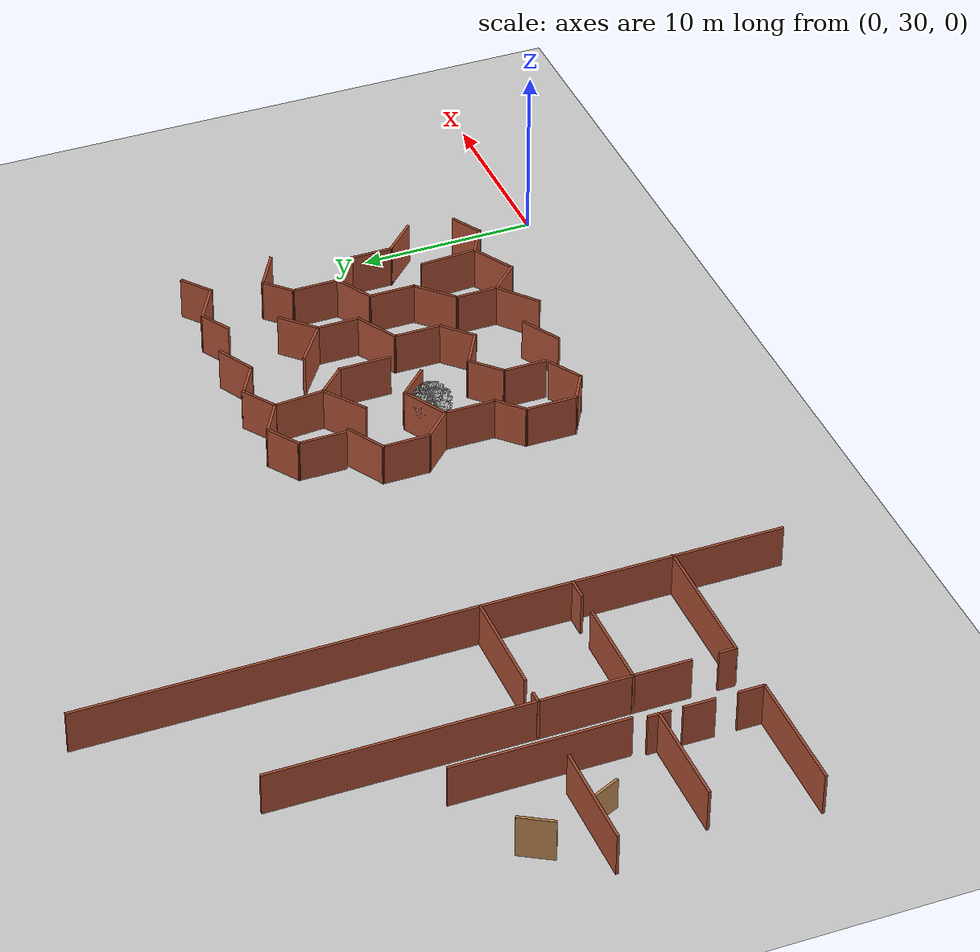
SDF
<sdf version="1.6">
 <world name="default">
  <model name="maze_rect_3">
   <pose>4e-06 -9.9e-05 0 0 -0 1.57001</pose>
   <link name="Wall_113">
    <collision name="Wall_113_Collision">
     <geometry><box><size>2 0.15 2.5</size></box></geometry>
     <pose>0 0 1.25 0 -0 0</pose>
    </collision>
    <visual name="Wall_113_Visual">
     <pose>0 0 1.25 0 -0 0</pose>
     <geometry><box><size>2 0.15 2.5</size></box></geometry>
     <material>
      <script><uri>file://media/materials/scripts/gazebo.material</uri><name>Gazebo/Bricks</name></script>
      <ambient>1 1 1 1</ambient>
     </material>
     <meta><layer>0</layer></meta>
    </visual>
    <pose>34.4861 17.9008 0 0 -0 1.0472</pose>
   </link>
   <link name="Wall_114">
    <collision name="Wall_114_Collision">
     <geometry><box><size>3 0.15 2.5</size></box></geometry>
     <pose>0 0 1.25 0 -0 0</pose>
    </collision>
    <visual name="Wall_114_Visual">
     <pose>0 0 1.25 0 -0 0</pose>
     <geometry><box><size>3 0.15 2.5</size></box></geometry>
     <material>
      <script><uri>file://media/materials/scripts/gazebo.material</uri><name>Gazebo/Bricks</name></script>
      <ambient>1 1 1 1</ambient>
     </material>
     <meta><layer>0</layer></meta>
    </visual>
    <pose>36.3736 18.7018 0 0 -0 0</pose>
   </link>
   <link name="Wall_115">
    <collision name="Wall_115_Collision">
     <geometry><box><size>2 0.15 2.5</size></box></geometry>
     <pose>0 0 1.25 0 -0 0</pose>
    </collision>
    <visual name="Wall_115_Visual">
     <pose>0 0 1.25 0 -0 0</pose>
     <geometry><box><size>2 0.15 2.5</size></box></geometry>
     <material>
      <script><uri>file://media/materials/scripts/gazebo.material</uri><name>Gazebo/Bricks</name></script>
      <ambient>1 1 1 1</ambient>
     </material>
     <meta><layer>0</layer></meta>
    </visual>
    <pose>38.4527 18.0478 0 0 -0 -0.785398</pose>
   </link>
   <link name="Wall_116">
    <collision name="Wall_116_Collision">
     <geometry><box><size>3 0.15 2.5</size></box></geometry>
     <pose>0 0 1.25 0 -0 0</pose>
    </collision>
    <visual name="Wall_116_Visual">
     <pose>0 0 1.25 0 -0 0</pose>
     <geometry><box><size>3 0.15 2.5</size></box></geometry>
     <material>
      <script><uri>file://media/materials/scripts/gazebo.material</uri><name>Gazebo/Bricks</name></script>
      <ambient>1 1 1 1</ambient>
     </material>
     <meta><layer>0</layer></meta>
    </visual>
    <pose>40.5318 17.3937 0 0 -0 0</pose>
   </link>
   <link name="Wall_117">
    <collision name="Wall_117_Collision">
     <geometry><box><size>2.25 0.15 2.5</size></box></geometry>
     <pose>0 0 1.25 0 -0 0</pose>
    </collision>
    <visual name="Wall_117_Visual">
     <pose>0 0 1.25 0 -0 0</pose>
     <geometry><box><size>2.25 0.15 2.5</size></box></geometry>
     <material>
      <script><uri>file://media/materials/scripts/gazebo.material</uri><name>Gazebo/Bricks</name></script>
      <ambient>1 1 1 1</ambient>
     </material>
     <meta><layer>0</layer></meta>
    </visual>
    <pose>42.6993 18.1362 0 0 -0 0.785398</pose>
   </link>
   <link name="Wall_118">
    <collision name="Wall_118_Collision">
     <geometry><box><size>2.75 0.15 2.5</size></box></geometry>
     <pose>0 0 1.25 0 -0 0</pose>
    </collision>
    <visual name="Wall_118_Visual">
     <pose>0 0 1.25 0 -0 0</pose>
     <geometry><box><size>2.75 0.15 2.5</size></box></geometry>
     <material>
      <script><uri>file://media/materials/scripts/gazebo.material</uri><name>Gazebo/Bricks</name></script>
      <ambient>1 1 1 1</ambient>
     </material>
     <meta><layer>0</layer></meta>
    </visual>
    <pose>44.7417 18.8786 0 0 -0 0</pose>
   </link>
   <link name="Wall_119">
    <collision name="Wall_119_Collision">
     <geometry><box><size>2.5 0.15 2.5</size></box></geometry>
     <pose>0 0 1.25 0 -0 0</pose>
    </collision>
    <visual name="Wall_119_Visual">
     <pose>0 0 1.25 0 -0 0</pose>
     <geometry><box><size>2.5 0.15 2.5</size></box></geometry>
     <material>
      <script><uri>file://media/materials/scripts/gazebo.material</uri><name>Gazebo/Bricks</name></script>
      <ambient>1 1 1 1</ambient>
     </material>
     <meta><layer>0</layer></meta>
    </visual>
    <pose>46.6292 17.861 0 0 -0 -1.0472</pose>
   </link>
   <link name="Wall_121">
    <collision name="Wall_121_Collision">
     <geometry><box><size>2.75 0.15 2.5</size></box></geometry>
     <pose>0 0 1.25 0 -0 0</pose>
    </collision>
    <visual name="Wall_121_Visual">
     <pose>0 0 1.25 0 -0 0</pose>
     <geometry><box><size>2.75 0.15 2.5</size></box></geometry>
     <material>
      <script><uri>file://media/materials/scripts/gazebo.material</uri><name>Gazebo/Bricks</name></script>
      <ambient>1 1 1 1</ambient>
     </material>
     <meta><layer>0</layer></meta>
    </visual>
    <pose>48.7841 16.998 0 0 -0 0</pose>
   </link>
   <link name="Wall_122">
    <collision name="Wall_122_Collision">
     <geometry><box><size>2.17873 0.15 2.5</size></box></geometry>
     <pose>0 0 1.25 0 -0 0</pose>
    </collision>
    <visual name="Wall_122_Visual">
     <pose>0 0 1.25 0 -0 0</pose>
     <geometry><box><size>2.17873 0.15 2.5</size></box></geometry>
     <material>
      <script><uri>file://media/materials/scripts/gazebo.material</uri><name>Gazebo/Bricks</name></script>
      <ambient>1 1 1 1</ambient>
     </material>
     <meta><layer>0</layer></meta>
    </visual>
    <pose>50.652 16.1575 0 0 -0 -0.976644</pose>
   </link>
   <link name="Wall_123">
    <collision name="Wall_123_Collision">
     <geometry><box><size>2.25 0.15 2.5</size></box></geometry>
     <pose>0 0 1.25 0 -0 0</pose>
    </collision>
    <visual name="Wall_123_Visual">
     <pose>0 0 1.25 0 -0 0</pose>
     <geometry><box><size>2.25 0.15 2.5</size></box></geometry>
     <material>
      <script><uri>file://media/materials/scripts/gazebo.material</uri><name>Gazebo/Bricks</name></script>
      <ambient>1 1 1 1</ambient>
     </material>
     <meta><layer>0</layer></meta>
    </visual>
    <pose>50.6948 14.4076 0 0 -0 -2.0944</pose>
   </link>
   <link name="Wall_124">
    <collision name="Wall_124_Collision">
     <geometry><box><size>2.28524 0.15 2.5</size></box></geometry>
     <pose>0 0 1.25 0 -0 0</pose>
    </collision>
    <visual name="Wall_124_Visual">
     <pose>0 0 1.25 0 -0 0</pose>
     <geometry><box><size>2.28524 0.15 2.5</size></box></geometry>
     <material>
      <script><uri>file://media/materials/scripts/gazebo.material</uri><name>Gazebo/Bricks</name></script>
      <ambient>1 1 1 1</ambient>
     </material>
     <meta><layer>0</layer></meta>
    </visual>
    <pose>50.744 12.6156 0 0 -0 -0.973411</pose>
   </link>
   <link name="Wall_125">
    <collision name="Wall_125_Collision">
     <geometry><box><size>2.25 0.15 2.5</size></box></geometry>
     <pose>0 0 1.25 0 -0 0</pose>
    </collision>
    <visual name="Wall_125_Visual">
     <pose>0 0 1.25 0 -0 0</pose>
     <geometry><box><size>2.25 0.15 2.5</size></box></geometry>
     <material>
      <script><uri>file://media/materials/scripts/gazebo.material</uri><name>Gazebo/Bricks</name></script>
      <ambient>1 1 1 1</ambient>
     </material>
     <meta><layer>0</layer></meta>
    </visual>
    <pose>50.7932 10.8235 0 0 -0 -2.0944</pose>
   </link>
   <link name="Wall_128">
    <collision name="Wall_128_Collision">
     <geometry><box><size>2 0.15 2.5</size></box></geometry>
     <pose>0 0 1.25 0 -0 0</pose>
    </collision>
    <visual name="Wall_128_Visual">
     <pose>0 0 1.25 0 -0 0</pose>
     <geometry><box><size>2 0.15 2.5</size></box></geometry>
     <material>
      <script><uri>file://media/materials/scripts/gazebo.material</uri><name>Gazebo/Bricks</name></script>
      <ambient>1 1 1 1</ambient>
     </material>
     <meta><layer>0</layer></meta>
    </visual>
    <pose>50.7342 5.33012 0 0 -0 -1.0472</pose>
   </link>
   <link name="Wall_129">
    <collision name="Wall_129_Collision">
     <geometry><box><size>2.5 0.15 2.5</size></box></geometry>
     <pose>0 0 1.25 0 -0 0</pose>
    </collision>
    <visual name="Wall_129_Visual">
     <pose>0 0 1.25 0 -0 0</pose>
     <geometry><box><size>2.5 0.15 2.5</size></box></geometry>
     <material>
      <script><uri>file://media/materials/scripts/gazebo.material</uri><name>Gazebo/Bricks</name></script>
      <ambient>1 1 1 1</ambient>
     </material>
     <meta><layer>0</layer></meta>
    </visual>
    <pose>50.6092 3.51146 0 0 -0 -2.0944</pose>
   </link>
   <link name="Wall_130">
    <collision name="Wall_130_Collision">
     <geometry><box><size>2.03359 0.15 2.5</size></box></geometry>
     <pose>0 0 1.25 0 -0 0</pose>
    </collision>
    <visual name="Wall_130_Visual">
     <pose>0 0 1.25 0 -0 0</pose>
     <geometry><box><size>2.03359 0.15 2.5</size></box></geometry>
     <material>
      <script><uri>file://media/materials/scripts/gazebo.material</uri><name>Gazebo/Bricks</name></script>
      <ambient>1 1 1 1</ambient>
     </material>
     <meta><layer>0</layer></meta>
    </visual>
    <pose>50.6097 1.75817 0 0 -0 -0.896561</pose>
   </link>
   <link name="Wall_258">
    <collision name="Wall_258_Collision">
     <geometry><box><size>2.5 0.15 2.5</size></box></geometry>
     <pose>0 0 1.25 0 -0 0</pose>
    </collision>
    <visual name="Wall_258_Visual">
     <pose>0 0 1.25 0 -0 0</pose>
     <geometry><box><size>2.5 0.15 2.5</size></box></geometry>
     <material>
      <script><uri>file://media/materials/scripts/gazebo.material</uri><name>Gazebo/Bricks</name></script>
      <ambient>1 1 1 1</ambient>
     </material>
     <meta><layer>0</layer></meta>
    </visual>
    <pose>46.5025 1.84885 0 0 -0 1.0472</pose>
   </link>
   <link name="Wall_259">
    <collision name="Wall_259_Collision">
     <geometry><box><size>2 0.15 2.5</size></box></geometry>
     <pose>0 0 1.25 0 -0 0</pose>
    </collision>
    <visual name="Wall_259_Visual">
     <pose>0 0 1.25 0 -0 0</pose>
     <geometry><box><size>2 0.15 2.5</size></box></geometry>
     <material>
      <script><uri>file://media/materials/scripts/gazebo.material</uri><name>Gazebo/Bricks</name></script>
      <ambient>1 1 1 1</ambient>
     </material>
     <meta><layer>0</layer></meta>
    </visual>
    <pose>46.436 3.52051 0 0 -0 2.35619</pose>
   </link>
   <link name="Wall_260">
    <collision name="Wall_260_Collision">
     <geometry><box><size>2.75 0.15 2.5</size></box></geometry>
     <pose>0 0 1.25 0 -0 0</pose>
    </collision>
    <visual name="Wall_260_Visual">
     <pose>0 0 1.25 0 -0 0</pose>
     <geometry><box><size>2.75 0.15 2.5</size></box></geometry>
     <material>
      <script><uri>file://media/materials/scripts/gazebo.material</uri><name>Gazebo/Bricks</name></script>
      <ambient>1 1 1 1</ambient>
     </material>
     <meta><layer>0</layer></meta>
    </visual>
    <pose>44.4819 4.17458 0 0 -0 3.14159</pose>
   </link>
   <link name="Wall_261">
    <collision name="Wall_261_Collision">
     <geometry><box><size>2.5 0.15 2.5</size></box></geometry>
     <pose>0 0 1.25 0 -0 0</pose>
    </collision>
    <visual name="Wall_261_Visual">
     <pose>0 0 1.25 0 -0 0</pose>
     <geometry><box><size>2.5 0.15 2.5</size></box></geometry>
     <material>
      <script><uri>file://media/materials/scripts/gazebo.material</uri><name>Gazebo/Bricks</name></script>
      <ambient>1 1 1 1</ambient>
     </material>
     <meta><layer>0</layer></meta>
    </visual>
    <pose>42.5944 5.19216 0 0 -0 2.0944</pose>
   </link>
   <link name="Wall_262">
    <collision name="Wall_262_Collision">
     <geometry><box><size>2.75 0.15 2.5</size></box></geometry>
     <pose>0 0 1.25 0 -0 0</pose>
    </collision>
    <visual name="Wall_262_Visual">
     <pose>0 0 1.25 0 -0 0</pose>
     <geometry><box><size>2.75 0.15 2.5</size></box></geometry>
     <material>
      <script><uri>file://media/materials/scripts/gazebo.material</uri><name>Gazebo/Bricks</name></script>
      <ambient>1 1 1 1</ambient>
     </material>
     <meta><layer>0</layer></meta>
    </visual>
    <pose>40.7069 6.20974 0 0 -0 3.14159</pose>
   </link>
   <link name="Wall_263">
    <collision name="Wall_263_Collision">
     <geometry><box><size>2.75 0.15 2.5</size></box></geometry>
     <pose>0 0 1.25 0 -0 0</pose>
    </collision>
    <visual name="Wall_263_Visual">
     <pose>0 0 1.25 0 -0 0</pose>
     <geometry><box><size>2.75 0.15 2.5</size></box></geometry>
     <material>
      <script><uri>file://media/materials/scripts/gazebo.material</uri><name>Gazebo/Bricks</name></script>
      <ambient>1 1 1 1</ambient>
     </material>
     <meta><layer>0</layer></meta>
    </visual>
    <pose>38.4877 7.12898 0 0 -0 2.35619</pose>
   </link>
   <link name="Wall_264">
    <collision name="Wall_264_Collision">
     <geometry><box><size>2.5 0.15 2.5</size></box></geometry>
     <pose>0 0 1.25 0 -0 0</pose>
    </collision>
    <visual name="Wall_264_Visual">
     <pose>0 0 1.25 0 -0 0</pose>
     <geometry><box><size>2.5 0.15 2.5</size></box></geometry>
     <material>
      <script><uri>file://media/materials/scripts/gazebo.material</uri><name>Gazebo/Bricks</name></script>
      <ambient>1 1 1 1</ambient>
     </material>
     <meta><layer>0</layer></meta>
    </visual>
    <pose>36.3934 8.04822 0 0 -0 3.14159</pose>
   </link>
   <link name="Wall_265">
    <collision name="Wall_265_Collision">
     <geometry><box><size>2.25 0.15 2.5</size></box></geometry>
     <pose>0 0 1.25 0 -0 0</pose>
    </collision>
    <visual name="Wall_265_Visual">
     <pose>0 0 1.25 0 -0 0</pose>
     <geometry><box><size>2.25 0.15 2.5</size></box></geometry>
     <material>
      <script><uri>file://media/materials/scripts/gazebo.material</uri><name>Gazebo/Bricks</name></script>
      <ambient>1 1 1 1</ambient>
     </material>
     <meta><layer>0</layer></meta>
    </visual>
    <pose>34.4759 7.30576 0 0 -0 -2.35619</pose>
   </link>
   <link name="Wall_266">
    <collision name="Wall_266_Collision">
     <geometry><box><size>2.75 0.15 2.5</size></box></geometry>
     <pose>0 0 1.25 0 -0 0</pose>
    </collision>
    <visual name="Wall_266_Visual">
     <pose>0 0 1.25 0 -0 0</pose>
     <geometry><box><size>2.75 0.15 2.5</size></box></geometry>
     <material>
      <script><uri>file://media/materials/scripts/gazebo.material</uri><name>Gazebo/Bricks</name></script>
      <ambient>1 1 1 1</ambient>
     </material>
     <meta><layer>0</layer></meta>
    </visual>
    <pose>34.3835 5.43746 0 0 -0 -1.0472</pose>
   </link>
   <link name="Wall_267">
    <collision name="Wall_267_Collision">
     <geometry><box><size>2 0.15 2.5</size></box></geometry>
     <pose>0 0 1.25 0 -0 0</pose>
    </collision>
    <visual name="Wall_267_Visual">
     <pose>0 0 1.25 0 -0 0</pose>
     <geometry><box><size>2 0.15 2.5</size></box></geometry>
     <material>
      <script><uri>file://media/materials/scripts/gazebo.material</uri><name>Gazebo/Bricks</name></script>
      <ambient>1 1 1 1</ambient>
     </material>
     <meta><layer>0</layer></meta>
    </visual>
    <pose>34.571 3.51055 0 0 -0 -2.0944</pose>
   </link>
   <link name="Wall_268">
    <collision name="Wall_268_Collision">
     <geometry><box><size>2 0.15 2.5</size></box></geometry>
     <pose>0 0 1.25 0 -0 0</pose>
    </collision>
    <visual name="Wall_268_Visual">
     <pose>0 0 1.25 0 -0 0</pose>
     <geometry><box><size>2 0.15 2.5</size></box></geometry>
     <material>
      <script><uri>file://media/materials/scripts/gazebo.material</uri><name>Gazebo/Bricks</name></script>
      <ambient>1 1 1 1</ambient>
     </material>
     <meta><layer>0</layer></meta>
    </visual>
    <pose>34.571 1.90841 0 0 -0 -1.0472</pose>
   </link>
   <link name="Wall_289">
    <collision name="Wall_289_Collision">
     <geometry><box><size>2.5 0.15 2.5</size></box></geometry>
     <pose>0 0 1.25 0 -0 0</pose>
    </collision>
    <visual name="Wall_289_Visual">
     <pose>0 0 1.25 0 -0 0</pose>
     <geometry><box><size>2.5 0.15 2.5</size></box></geometry>
     <material>
      <script><uri>file://media/materials/scripts/gazebo.material</uri><name>Gazebo/Bricks</name></script>
      <ambient>1 1 1 1</ambient>
     </material>
     <meta><layer>0</layer></meta>
    </visual>
    <pose>38.5246 1.63102 0 0 -0 0.785398</pose>
   </link>
   <link name="Wall_290">
    <collision name="Wall_290_Collision">
     <geometry><box><size>2.5 0.15 2.5</size></box></geometry>
     <pose>0 0 1.25 0 -0 0</pose>
    </collision>
    <visual name="Wall_290_Visual">
     <pose>0 0 1.25 0 -0 0</pose>
     <geometry><box><size>2.5 0.15 2.5</size></box></geometry>
     <material>
      <script><uri>file://media/materials/scripts/gazebo.material</uri><name>Gazebo/Bricks</name></script>
      <ambient>1 1 1 1</ambient>
     </material>
     <meta><layer>0</layer></meta>
    </visual>
    <pose>40.5304 2.46187 0 0 -0 0</pose>
   </link>
   <link name="Wall_291">
    <collision name="Wall_291_Collision">
     <geometry><box><size>2.41125 0.15 2.5</size></box></geometry>
     <pose>0 0 1.25 0 -0 0</pose>
    </collision>
    <visual name="Wall_291_Visual">
     <pose>0 0 1.25 0 -0 0</pose>
     <geometry><box><size>2.41125 0.15 2.5</size></box></geometry>
     <material>
      <script><uri>file://media/materials/scripts/gazebo.material</uri><name>Gazebo/Bricks</name></script>
      <ambient>1 1 1 1</ambient>
     </material>
     <meta><layer>0</layer></meta>
    </visual>
    <pose>42.4437 3.31823 0 0 -0 0.859343</pose>
   </link>
   <link name="Wall_293">
    <collision name="Wall_293_Collision">
     <geometry><box><size>3.36553 0.15 2.5</size></box></geometry>
     <pose>0 0 1.25 0 -0 0</pose>
    </collision>
    <visual name="Wall_293_Visual">
     <pose>0 0 1.25 0 -0 0</pose>
     <geometry><box><size>3.36553 0.15 2.5</size></box></geometry>
     <material>
      <script><uri>file://media/materials/scripts/gazebo.material</uri><name>Gazebo/Bricks</name></script>
      <ambient>1 1 1 1</ambient>
     </material>
     <meta><layer>0</layer></meta>
    </visual>
    <pose>36.639 4.3965 0 0 -0 -3.08878</pose>
   </link>
   <link name="Wall_299">
    <collision name="Wall_299_Collision">
     <geometry><box><size>2.5 0.15 2.5</size></box></geometry>
     <pose>0 0 1.25 0 -0 0</pose>
    </collision>
    <visual name="Wall_299_Visual">
     <pose>0 0 1.25 0 -0 0</pose>
     <geometry><box><size>2.5 0.15 2.5</size></box></geometry>
     <material>
      <script><uri>file://media/materials/scripts/gazebo.material</uri><name>Gazebo/Bricks</name></script>
      <ambient>1 1 1 1</ambient>
     </material>
     <meta><layer>0</layer></meta>
    </visual>
    <pose>46.5125 7.05792 0 0 -0 2.35619</pose>
   </link>
   <link name="Wall_300">
    <collision name="Wall_300_Collision">
     <geometry><box><size>2.5 0.15 2.5</size></box></geometry>
     <pose>0 0 1.25 0 -0 0</pose>
    </collision>
    <visual name="Wall_300_Visual">
     <pose>0 0 1.25 0 -0 0</pose>
     <geometry><box><size>2.5 0.15 2.5</size></box></geometry>
     <material>
      <script><uri>file://media/materials/scripts/gazebo.material</uri><name>Gazebo/Bricks</name></script>
      <ambient>1 1 1 1</ambient>
     </material>
     <meta><layer>0</layer></meta>
    </visual>
    <pose>44.5066 7.88877 0 0 -0 3.14159</pose>
   </link>
   <link name="Wall_301">
    <collision name="Wall_301_Collision">
     <geometry><box><size>2.75 0.15 2.5</size></box></geometry>
     <pose>0 0 1.25 0 -0 0</pose>
    </collision>
    <visual name="Wall_301_Visual">
     <pose>0 0 1.25 0 -0 0</pose>
     <geometry><box><size>2.75 0.15 2.5</size></box></geometry>
     <material>
      <script><uri>file://media/materials/scripts/gazebo.material</uri><name>Gazebo/Bricks</name></script>
      <ambient>1 1 1 1</ambient>
     </material>
     <meta><layer>0</layer></meta>
    </visual>
    <pose>42.6816 9.01461 0 0 -0 2.0944</pose>
   </link>
   <link name="Wall_302">
    <collision name="Wall_302_Collision">
     <geometry><box><size>2.75 0.15 2.5</size></box></geometry>
     <pose>0 0 1.25 0 -0 0</pose>
    </collision>
    <visual name="Wall_302_Visual">
     <pose>0 0 1.25 0 -0 0</pose>
     <geometry><box><size>2.75 0.15 2.5</size></box></geometry>
     <material>
      <script><uri>file://media/materials/scripts/gazebo.material</uri><name>Gazebo/Bricks</name></script>
      <ambient>1 1 1 1</ambient>
     </material>
     <meta><layer>0</layer></meta>
    </visual>
    <pose>40.7316 10.1404 0 0 -0 3.14159</pose>
   </link>
   <link name="Wall_303">
    <collision name="Wall_303_Collision">
     <geometry><box><size>2.25 0.15 2.5</size></box></geometry>
     <pose>0 0 1.25 0 -0 0</pose>
    </collision>
    <visual name="Wall_303_Visual">
     <pose>0 0 1.25 0 -0 0</pose>
     <geometry><box><size>2.25 0.15 2.5</size></box></geometry>
     <material>
      <script><uri>file://media/materials/scripts/gazebo.material</uri><name>Gazebo/Bricks</name></script>
      <ambient>1 1 1 1</ambient>
     </material>
     <meta><layer>0</layer></meta>
    </visual>
    <pose>38.6892 10.8829 0 0 -0 2.35619</pose>
   </link>
   <link name="Wall_304">
    <collision name="Wall_304_Collision">
     <geometry><box><size>2.5 0.15 2.5</size></box></geometry>
     <pose>0 0 1.25 0 -0 0</pose>
    </collision>
    <visual name="Wall_304_Visual">
     <pose>0 0 1.25 0 -0 0</pose>
     <geometry><box><size>2.5 0.15 2.5</size></box></geometry>
     <material>
      <script><uri>file://media/materials/scripts/gazebo.material</uri><name>Gazebo/Bricks</name></script>
      <ambient>1 1 1 1</ambient>
     </material>
     <meta><layer>0</layer></meta>
    </visual>
    <pose>38.5342 12.6429 0 0 -0 1.0472</pose>
   </link>
   <link name="Wall_305">
    <collision name="Wall_305_Collision">
     <geometry><box><size>2.25 0.15 2.5</size></box></geometry>
     <pose>0 0 1.25 0 -0 0</pose>
    </collision>
    <visual name="Wall_305_Visual">
     <pose>0 0 1.25 0 -0 0</pose>
     <geometry><box><size>2.25 0.15 2.5</size></box></geometry>
     <material>
      <script><uri>file://media/materials/scripts/gazebo.material</uri><name>Gazebo/Bricks</name></script>
      <ambient>1 1 1 1</ambient>
     </material>
     <meta><layer>0</layer></meta>
    </visual>
    <pose>38.3793 14.403 0 0 -0 2.35619</pose>
   </link>
   <link name="Wall_306">
    <collision name="Wall_306_Collision">
     <geometry><box><size>2.5 0.15 2.5</size></box></geometry>
     <pose>0 0 1.25 0 -0 0</pose>
    </collision>
    <visual name="Wall_306_Visual">
     <pose>0 0 1.25 0 -0 0</pose>
     <geometry><box><size>2.5 0.15 2.5</size></box></geometry>
     <material>
      <script><uri>file://media/materials/scripts/gazebo.material</uri><name>Gazebo/Bricks</name></script>
      <ambient>1 1 1 1</ambient>
     </material>
     <meta><layer>0</layer></meta>
    </visual>
    <pose>36.4618 15.1454 0 0 -0 3.14159</pose>
   </link>
   <link name="Wall_308">
    <collision name="Wall_308_Collision">
     <geometry><box><size>2.16434 0.15 2.5</size></box></geometry>
     <pose>0 0 1.25 0 -0 0</pose>
    </collision>
    <visual name="Wall_308_Visual">
     <pose>0 0 1.25 0 -0 0</pose>
     <geometry><box><size>2.16434 0.15 2.5</size></box></geometry>
     <material>
      <script><uri>file://media/materials/scripts/gazebo.material</uri><name>Gazebo/Bricks</name></script>
      <ambient>1 1 1 1</ambient>
     </material>
     <meta><layer>0</layer></meta>
    </visual>
    <pose>34.5471 16.2392 0 0 -0 2.11732</pose>
   </link>
   <link name="Wall_310">
    <collision name="Wall_310_Collision">
     <geometry><box><size>2.25 0.15 2.5</size></box></geometry>
     <pose>0 0 1.25 0 -0 0</pose>
    </collision>
    <visual name="Wall_310_Visual">
     <pose>0 0 1.25 0 -0 0</pose>
     <geometry><box><size>2.25 0.15 2.5</size></box></geometry>
     <material>
      <script><uri>file://media/materials/scripts/gazebo.material</uri><name>Gazebo/Bricks</name></script>
      <ambient>1 1 1 1</ambient>
     </material>
     <meta><layer>0</layer></meta>
    </visual>
    <pose>42.5842 14.2697 0 0 -0 0.785398</pose>
   </link>
   <link name="Wall_311">
    <collision name="Wall_311_Collision">
     <geometry><box><size>2.89738 0.15 2.5</size></box></geometry>
     <pose>0 0 1.25 0 -0 0</pose>
    </collision>
    <visual name="Wall_311_Visual">
     <pose>0 0 1.25 0 -0 0</pose>
     <geometry><box><size>2.89738 0.15 2.5</size></box></geometry>
     <material>
      <script><uri>file://media/materials/scripts/gazebo.material</uri><name>Gazebo/Bricks</name></script>
      <ambient>1 1 1 1</ambient>
     </material>
     <meta><layer>0</layer></meta>
    </visual>
    <pose>42.6417 16.2029 0 0 -0 2.09279</pose>
   </link>
   <link name="Wall_313">
    <collision name="Wall_313_Collision">
     <geometry><box><size>3 0.15 2.5</size></box></geometry>
     <pose>0 0 1.25 0 -0 0</pose>
    </collision>
    <visual name="Wall_313_Visual">
     <pose>0 0 1.25 0 -0 0</pose>
     <geometry><box><size>3 0.15 2.5</size></box></geometry>
     <material>
      <script><uri>file://media/materials/scripts/gazebo.material</uri><name>Gazebo/Bricks</name></script>
      <ambient>1 1 1 1</ambient>
     </material>
     <meta><layer>0</layer></meta>
    </visual>
    <pose>44.4305 11.7816 0 0 -0 0</pose>
   </link>
   <link name="Wall_314">
    <collision name="Wall_314_Collision">
     <geometry><box><size>2.25 0.15 2.5</size></box></geometry>
     <pose>0 0 1.25 0 -0 0</pose>
    </collision>
    <visual name="Wall_314_Visual">
     <pose>0 0 1.25 0 -0 0</pose>
     <geometry><box><size>2.25 0.15 2.5</size></box></geometry>
     <material>
      <script><uri>file://media/materials/scripts/gazebo.material</uri><name>Gazebo/Bricks</name></script>
      <ambient>1 1 1 1</ambient>
     </material>
     <meta><layer>0</layer></meta>
    </visual>
    <pose>46.598 12.524 0 0 -0 0.785398</pose>
   </link>
   <link name="Wall_315">
    <collision name="Wall_315_Collision">
     <geometry><box><size>2.96261 0.15 2.5</size></box></geometry>
     <pose>0 0 1.25 0 -0 0</pose>
    </collision>
    <visual name="Wall_315_Visual">
     <pose>0 0 1.25 0 -0 0</pose>
     <geometry><box><size>2.96261 0.15 2.5</size></box></geometry>
     <material>
      <script><uri>file://media/materials/scripts/gazebo.material</uri><name>Gazebo/Bricks</name></script>
      <ambient>1 1 1 1</ambient>
     </material>
     <meta><layer>0</layer></meta>
    </visual>
    <pose>48.742 13.3824 0 0 -0 0.082504</pose>
   </link>
   <link name="Wall_317">
    <collision name="Wall_317_Collision">
     <geometry><box><size>2.8328 0.15 2.5</size></box></geometry>
     <pose>0 0 1.25 0 -0 0</pose>
    </collision>
    <visual name="Wall_317_Visual">
     <pose>0 0 1.25 0 -0 0</pose>
     <geometry><box><size>2.8328 0.15 2.5</size></box></geometry>
     <material>
      <script><uri>file://media/materials/scripts/gazebo.material</uri><name>Gazebo/Bricks</name></script>
      <ambient>1 1 1 1</ambient>
     </material>
     <meta><layer>0</layer></meta>
    </visual>
    <pose>46.5484 14.3491 0 0 -0 -0.939151</pose>
   </link>
   <link name="Wall_319">
    <collision name="Wall_319_Collision">
     <geometry><box><size>2.91836 0.15 2.5</size></box></geometry>
     <pose>0 0 1.25 0 -0 0</pose>
    </collision>
    <visual name="Wall_319_Visual">
     <pose>0 0 1.25 0 -0 0</pose>
     <geometry><box><size>2.91836 0.15 2.5</size></box></geometry>
     <material>
      <script><uri>file://media/materials/scripts/gazebo.material</uri><name>Gazebo/Bricks</name></script>
      <ambient>1 1 1 1</ambient>
     </material>
     <meta><layer>0</layer></meta>
    </visual>
    <pose>46.486 9.01522 0 0 -0 -2.19092</pose>
   </link>
   <link name="Wall_322">
    <collision name="Wall_322_Collision">
     <geometry><box><size>2.37902 0.15 2.5</size></box></geometry>
     <pose>0 0 1.25 0 -0 0</pose>
    </collision>
    <visual name="Wall_322_Visual">
     <pose>0 0 1.25 0 -0 0</pose>
     <geometry><box><size>2.37902 0.15 2.5</size></box></geometry>
     <material>
      <script><uri>file://media/materials/scripts/gazebo.material</uri><name>Gazebo/Bricks</name></script>
      <ambient>1 1 1 1</ambient>
     </material>
     <meta><layer>0</layer></meta>
    </visual>
    <pose>50.795 8.93202 0 0 -0 2.06307</pose>
   </link>
   <link name="Wall_337">
    <collision name="Wall_337_Collision">
     <geometry><box><size>2.5 0.15 2.5</size></box></geometry>
     <pose>0 0 1.25 0 -0 0</pose>
    </collision>
    <visual name="Wall_337_Visual">
     <pose>0 0 1.25 0 -0 0</pose>
     <geometry><box><size>2.5 0.15 2.5</size></box></geometry>
     <material>
      <script><uri>file://media/materials/scripts/gazebo.material</uri><name>Gazebo/Bricks</name></script>
      <ambient>1 1 1 1</ambient>
     </material>
     <meta><layer>0</layer></meta>
    </visual>
    <pose>34.4224 12.5236 0 0 -0 -1.0472</pose>
   </link>
   <link name="Wall_339">
    <collision name="Wall_339_Collision">
     <geometry><box><size>2.75001 0.15 2.5</size></box></geometry>
     <pose>0 0 1.25 0 -0 0</pose>
    </collision>
    <visual name="Wall_339_Visual">
     <pose>0 0 1.25 0 -0 0</pose>
     <geometry><box><size>2.75001 0.15 2.5</size></box></geometry>
     <material>
      <script><uri>file://media/materials/scripts/gazebo.material</uri><name>Gazebo/Bricks</name></script>
      <ambient>1 1 1 1</ambient>
     </material>
     <meta><layer>0</layer></meta>
    </visual>
    <pose>34.3717 9.03467 0 0 -0 -0.861478</pose>
   </link>
   <static>1</static>
  </model>
  <model name="tree2">
   <link name="link_0">
    <inertial>
     <mass>1</mass>
     <inertia>
      <ixx>0.166667</ixx>
      <ixy>0</ixy>
      <ixz>0</ixz>
      <iyy>0.166667</iyy>
      <iyz>0</iyz>
      <izz>0.166667</izz>
     </inertia>
    </inertial>
    <pose>-0 -0 0 1.58863 -0.000294 0</pose>
    <visual name="visual">
     <geometry><mesh><uri>model://tree2/Tree.obj</uri><scale>1 1 1</scale></mesh></geometry>
    </visual>
    <collision name="collision">
     <geometry><mesh><uri>model://tree2/Tree.obj</uri><scale>1 1 1</scale></mesh></geometry>
     <surface>
      <friction>
       <ode><mu>1</mu><mu2>1</mu2><fdir1>0 0 0</fdir1><slip1>0</slip1><slip2>0</slip2></ode>
       <torsional>
        <coefficient>1</coefficient>
        <patch_radius>0</patch_radius>
        <surface_radius>0</surface_radius>
        <use_patch_radius>1</use_patch_radius>
        <ode><slip>0</slip></ode>
       </torsional>
      </friction>
      <bounce><restitution_coefficient>0</restitution_coefficient><threshold>1e+06</threshold></bounce>
      <contact>
       <collide_without_contact>0</collide_without_contact>
       <collide_without_contact_bitmask>1</collide_without_contact_bitmask>
       <collide_bitmask>1</collide_bitmask>
       <ode>
        <soft_cfm>0</soft_cfm>
        <soft_erp>0.2</soft_erp>
        <kp>1e+13</kp>
        <kd>1</kd>
        <max_vel>0.01</max_vel>
        <min_depth>0</min_depth>
       </ode>
       <bullet>
        <split_impulse>1</split_impulse>
        <split_impulse_penetration_threshold>-0.01</split_impulse_penetration_threshold>
        <soft_cfm>0</soft_cfm>
        <soft_erp>0.2</soft_erp>
        <kp>1e+13</kp>
        <kd>1</kd>
       </bullet>
      </contact>
     </surface>
    </collision>
   </link>
   <static>1</static>
   <pose>-15.3735 42.0009 0 0 -0 0</pose>
  </model>
  <model name="map_palace_v2_model_1">
   <pose>0 60 0 0 -0 0</pose>
   <link name="Wall_101">
    <collision name="Wall_101_Collision">
     <geometry><box><size>1.25 0.15 2.5</size></box></geometry>
     <pose>0 0 1.25 0 -0 0</pose>
    </collision>
    <visual name="Wall_101_Visual">
     <pose>0 0 1.25 0 -0 0</pose>
     <geometry><box><size>1.25 0.15 2.5</size></box></geometry>
     <material>
      <script><uri>file://media/materials/scripts/gazebo.material</uri><name>Gazebo/Bricks</name></script>
      <ambient>1 1 1 1</ambient>
     </material>
     <meta><layer>0</layer></meta>
    </visual>
    <pose>-43.1277 -19.0321 0 0 -0 -1.5708</pose>
   </link>
   <link name="Wall_105">
    <collision name="Wall_105_Collision">
     <geometry><box><size>1.75 0.15 2.5</size></box></geometry>
     <pose>0 0 1.25 0 -0 0</pose>
    </collision>
    <visual name="Wall_105_Visual">
     <pose>0 0 1.25 0 -0 0</pose>
     <geometry><box><size>1.75 0.15 2.5</size></box></geometry>
     <material>
      <script><uri>file://media/materials/scripts/gazebo.material</uri><name>Gazebo/Bricks</name></script>
      <ambient>1 1 1 1</ambient>
     </material>
     <meta><layer>0</layer></meta>
    </visual>
    <pose>-43.1433 -21.1751 0 0 -0 -1.5708</pose>
   </link>
   <link name="Wall_107">
    <collision name="Wall_107_Collision">
     <geometry><box><size>1.5 0.15 2.5</size></box></geometry>
     <pose>0 0 1.25 0 -0 0</pose>
    </collision>
    <visual name="Wall_107_Visual">
     <pose>0 0 1.25 0 -0 0</pose>
     <geometry><box><size>1.5 0.15 2.5</size></box></geometry>
     <material>
      <script><uri>file://media/materials/scripts/gazebo.material</uri><name>Gazebo/Bricks</name></script>
      <ambient>1 1 1 1</ambient>
     </material>
     <meta><layer>0</layer></meta>
    </visual>
    <pose>-43.1433 -24.0001 0 0 -0 -1.5708</pose>
   </link>
   <link name="Wall_108">
    <collision name="Wall_108_Collision">
     <geometry><box><size>7 0.15 2.5</size></box></geometry>
     <pose>0 0 1.25 0 -0 0</pose>
    </collision>
    <visual name="Wall_108_Visual">
     <pose>0 0 1.25 0 -0 0</pose>
     <geometry><box><size>7 0.15 2.5</size></box></geometry>
     <material>
      <script><uri>file://media/materials/scripts/gazebo.material</uri><name>Gazebo/Bricks</name></script>
      <ambient>1 1 1 1</ambient>
     </material>
     <meta><layer>0</layer></meta>
    </visual>
    <pose>-46.5683 -24.6751 0 0 -0 3.14159</pose>
   </link>
   <link name="Wall_141">
    <collision name="Wall_141_Collision">
     <geometry><box><size>7.75 0.15 2.5</size></box></geometry>
     <pose>0 0 1.25 0 -0 0</pose>
    </collision>
    <visual name="Wall_141_Visual">
     <pose>0 0 1.25 0 -0 0</pose>
     <geometry><box><size>7.75 0.15 2.5</size></box></geometry>
     <material>
      <script><uri>file://media/materials/scripts/gazebo.material</uri><name>Gazebo/Bricks</name></script>
      <ambient>1 1 1 1</ambient>
     </material>
     <meta><layer>0</layer></meta>
    </visual>
    <pose>-36.3384 -24.5139 0 0 -0 3.14159</pose>
   </link>
   <link name="Wall_142">
    <collision name="Wall_142_Collision">
     <geometry><box><size>1 0.15 2.5</size></box></geometry>
     <pose>0 0 1.25 0 -0 0</pose>
    </collision>
    <visual name="Wall_142_Visual">
     <pose>0 0 1.25 0 -0 0</pose>
     <geometry><box><size>1 0.15 2.5</size></box></geometry>
     <material>
      <script><uri>file://media/materials/scripts/gazebo.material</uri><name>Gazebo/Bricks</name></script>
      <ambient>1 1 1 1</ambient>
     </material>
     <meta><layer>0</layer></meta>
    </visual>
    <pose>-40.1384 -24.0889 0 0 -0 1.5708</pose>
   </link>
   <link name="Wall_144">
    <collision name="Wall_144_Collision">
     <geometry><box><size>3.25 0.15 2.5</size></box></geometry>
     <pose>0 0 1.25 0 -0 0</pose>
    </collision>
    <visual name="Wall_144_Visual">
     <pose>0 0 1.25 0 -0 0</pose>
     <geometry><box><size>3.25 0.15 2.5</size></box></geometry>
     <material>
      <script><uri>file://media/materials/scripts/gazebo.material</uri><name>Gazebo/Bricks</name></script>
      <ambient>1 1 1 1</ambient>
     </material>
     <meta><layer>0</layer></meta>
    </visual>
    <pose>-40.1384 -20.5139 0 0 -0 1.5708</pose>
   </link>
   <link name="Wall_145">
    <collision name="Wall_145_Collision">
     <geometry><box><size>5.25 0.15 2.5</size></box></geometry>
     <pose>0 0 1.25 0 -0 0</pose>
    </collision>
    <visual name="Wall_145_Visual">
     <pose>0 0 1.25 0 -0 0</pose>
     <geometry><box><size>5.25 0.15 2.5</size></box></geometry>
     <material>
      <script><uri>file://media/materials/scripts/gazebo.material</uri><name>Gazebo/Bricks</name></script>
      <ambient>1 1 1 1</ambient>
     </material>
     <meta><layer>0</layer></meta>
    </visual>
    <pose>-37.5884 -18.9639 0 0 -0 0</pose>
   </link>
   <link name="Wall_147">
    <collision name="Wall_147_Collision">
     <geometry><box><size>1.25 0.15 2.5</size></box></geometry>
     <pose>0 0 1.25 0 -0 0</pose>
    </collision>
    <visual name="Wall_147_Visual">
     <pose>0 0 1.25 0 -0 0</pose>
     <geometry><box><size>1.25 0.15 2.5</size></box></geometry>
     <material>
      <script><uri>file://media/materials/scripts/gazebo.material</uri><name>Gazebo/Bricks</name></script>
      <ambient>1 1 1 1</ambient>
     </material>
     <meta><layer>0</layer></meta>
    </visual>
    <pose>-33.1384 -18.9639 0 0 -0 0</pose>
   </link>
   <link name="Wall_149">
    <collision name="Wall_149_Collision">
     <geometry><box><size>19.5 0.15 2.5</size></box></geometry>
     <pose>0 0 1.25 0 -0 0</pose>
    </collision>
    <visual name="Wall_149_Visual">
     <pose>0 0 1.25 0 -0 0</pose>
     <geometry><box><size>19.5 0.15 2.5</size></box></geometry>
     <material>
      <script><uri>file://media/materials/scripts/gazebo.material</uri><name>Gazebo/Bricks</name></script>
      <ambient>1 1 1 1</ambient>
     </material>
     <meta><layer>0</layer></meta>
    </visual>
    <pose>-40.1384 -9.28892 0 0 -0 1.5708</pose>
   </link>
   <link name="Wall_16">
    <collision name="Wall_16_Collision">
     <geometry><box><size>38.5 0.15 2.5</size></box></geometry>
     <pose>0 0 1.25 0 -0 0</pose>
    </collision>
    <visual name="Wall_16_Visual">
     <pose>0 0 1.25 0 -0 0</pose>
     <geometry><box><size>38.5 0.15 2.5</size></box></geometry>
     <material>
      <script><uri>file://media/materials/scripts/gazebo.material</uri><name>Gazebo/Bricks</name></script>
      <ambient>1 1 1 1</ambient>
     </material>
     <meta><layer>0</layer></meta>
    </visual>
    <pose>-32.5693 -11.4275 0 0 -0 1.5708</pose>
   </link>
   <link name="Wall_162">
    <collision name="Wall_162_Collision">
     <geometry><box><size>6 0.15 2.5</size></box></geometry>
     <pose>0 0 1.25 0 -0 0</pose>
    </collision>
    <visual name="Wall_162_Visual">
     <pose>0 0 1.25 0 -0 0</pose>
     <geometry><box><size>6 0.15 2.5</size></box></geometry>
     <material>
      <script><uri>file://media/materials/scripts/gazebo.material</uri><name>Gazebo/Bricks</name></script>
      <ambient>1 1 1 1</ambient>
     </material>
     <meta><layer>0</layer></meta>
    </visual>
    <pose>-47.2173 -13.8023 0 0 -0 0</pose>
   </link>
   <link name="Wall_168">
    <collision name="Wall_168_Collision">
     <geometry><box><size>6 0.15 2.5</size></box></geometry>
     <pose>0 0 1.25 0 -0 0</pose>
    </collision>
    <visual name="Wall_168_Visual">
     <pose>0 0 1.25 0 -0 0</pose>
     <geometry><box><size>6 0.15 2.5</size></box></geometry>
     <material>
      <script><uri>file://media/materials/scripts/gazebo.material</uri><name>Gazebo/Bricks</name></script>
      <ambient>1 1 1 1</ambient>
     </material>
     <meta><layer>0</layer></meta>
    </visual>
    <pose>-46.0586 -19.0371 0 0 -0 3.14159</pose>
   </link>
   <link name="Wall_173">
    <collision name="Wall_173_Collision">
     <geometry><box><size>6 0.15 2.5</size></box></geometry>
     <pose>0 0 1.25 0 -0 0</pose>
    </collision>
    <visual name="Wall_173_Visual">
     <pose>0 0 1.25 0 -0 0</pose>
     <geometry><box><size>6 0.15 2.5</size></box></geometry>
     <material>
      <script><uri>file://media/materials/scripts/gazebo.material</uri><name>Gazebo/Bricks</name></script>
      <ambient>1 1 1 1</ambient>
     </material>
     <meta><layer>0</layer></meta>
    </visual>
    <pose>-35.5177 -13.9112 0 0 -0 3.14159</pose>
   </link>
   <link name="Wall_175">
    <collision name="Wall_175_Collision">
     <geometry><box><size>0.75 0.15 2.5</size></box></geometry>
     <pose>0 0 1.25 0 -0 0</pose>
    </collision>
    <visual name="Wall_175_Visual">
     <pose>0 0 1.25 0 -0 0</pose>
     <geometry><box><size>0.75 0.15 2.5</size></box></geometry>
     <material>
      <script><uri>file://media/materials/scripts/gazebo.material</uri><name>Gazebo/Bricks</name></script>
      <ambient>1 1 1 1</ambient>
     </material>
     <meta><layer>0</layer></meta>
    </visual>
    <pose>-39.8427 -13.9112 0 0 -0 3.14159</pose>
   </link>
   <link name="Wall_99">
    <collision name="Wall_99_Collision">
     <geometry><box><size>9.70374 0.15 2.5</size></box></geometry>
     <pose>0 0 1.25 0 -0 0</pose>
    </collision>
    <visual name="Wall_99_Visual">
     <pose>0 0 1.25 0 -0 0</pose>
     <geometry><box><size>9.70374 0.15 2.5</size></box></geometry>
     <material>
      <script><uri>file://media/materials/scripts/gazebo.material</uri><name>Gazebo/Bricks</name></script>
      <ambient>1 1 1 1</ambient>
     </material>
     <meta><layer>0</layer></meta>
    </visual>
    <pose>-42.9077 -12.8842 0 0 -0 -1.5708</pose>
   </link>
   <static>1</static>
  </model>
  <model name="wall_0">
   <pose>-46.3779 45.2874 -0.671409 0 -0 2.00551</pose>
   <link name="Wall_2">
    <collision name="Wall_2_Collision">
     <geometry><box><size>2 0.15 2.5</size></box></geometry>
     <pose>0 0 1.25 0 -0 0</pose>
    </collision>
    <visual name="Wall_2_Visual">
     <pose>0 0 1.25 0 -0 0</pose>
     <geometry><box><size>2 0.15 2.5</size></box></geometry>
     <material>
      <script><uri>file://media/materials/scripts/gazebo.material</uri><name>Gazebo/Wood</name></script>
      <ambient>1 1 1 1</ambient>
     </material>
     <meta><layer>0</layer></meta>
    </visual>
    <pose>-0.005 -0 0 0 -0 0</pose>
   </link>
   <link name="Wall_3">
    <collision name="Wall_3_Collision">
     <geometry><box><size>0.16 0.15 2.5</size></box></geometry>
     <pose>0 0 1.25 0 -0 0</pose>
    </collision>
    <visual name="Wall_3_Visual">
     <pose>0 0 1.25 0 -0 0</pose>
     <geometry><box><size>0.16 0.15 2.5</size></box></geometry>
     <material>
      <script><uri>file://media/materials/scripts/gazebo.material</uri><name>Gazebo/Wood</name></script>
      <ambient>1 1 1 1</ambient>
     </material>
     <meta><layer>0</layer></meta>
    </visual>
    <pose>0.925 0 0 0 -0 0</pose>
   </link>
   <static>1</static>
  </model>
  <model name="wall_1">
   <pose>-47.7247 49.3243 0 0 -0 1.03422</pose>
   <link name="Wall_2">
    <collision name="Wall_2_Collision">
     <geometry><box><size>2 0.15 2.5</size></box></geometry>
     <pose>0 0 1.25 0 -0 0</pose>
    </collision>
    <visual name="Wall_2_Visual">
     <pose>0 0 1.25 0 -0 0</pose>
     <geometry><box><size>2 0.15 2.5</size></box></geometry>
     <material>
      <script><uri>file://media/materials/scripts/gazebo.material</uri><name>Gazebo/Wood</name></script>
      <ambient>1 1 1 1</ambient>
     </material>
     <meta><layer>0</layer></meta>
    </visual>
    <pose>-0.005 -0 0 0 -0 0</pose>
   </link>
   <link name="Wall_3">
    <collision name="Wall_3_Collision">
     <geometry><box><size>0.16 0.15 2.5</size></box></geometry>
     <pose>0 0 1.25 0 -0 0</pose>
    </collision>
    <visual name="Wall_3_Visual">
     <pose>0 0 1.25 0 -0 0</pose>
     <geometry><box><size>0.16 0.15 2.5</size></box></geometry>
     <material>
      <script><uri>file://media/materials/scripts/gazebo.material</uri><name>Gazebo/Wood</name></script>
      <ambient>1 1 1 1</ambient>
     </material>
     <meta><layer>0</layer></meta>
    </visual>
    <pose>0.925 0 0 0 -0 0</pose>
   </link>
   <static>1</static>
  </model>
  <model name="ground_plane">
   <static>1</static>
   <link name="link">
    <collision name="collision">
     <geometry><plane><normal>0 0 1</normal><size>100 100</size></plane></geometry>
     <surface>
      <contact><collide_bitmask>65535</collide_bitmask></contact>
      <friction><ode><mu>100</mu><mu2>50</mu2></ode></friction>
     </surface>
    </collision>
    <visual name="visual">
     <cast_shadows>0</cast_shadows>
     <geometry><plane><normal>0 0 1</normal><size>100 100</size></plane></geometry>
     <material>
      <script><uri>file://media/materials/scripts/gazebo.material</uri><name>Gazebo/Grey</name></script>
     </material>
    </visual>
   </link>
   <pose>9.31394 52.073 0 0 -0 0</pose>
  </model>
 </world>
</sdf>
